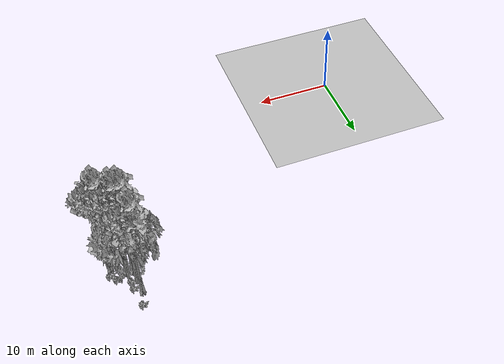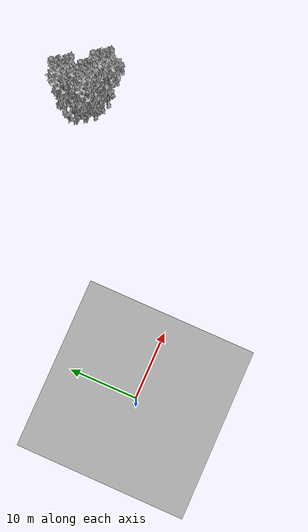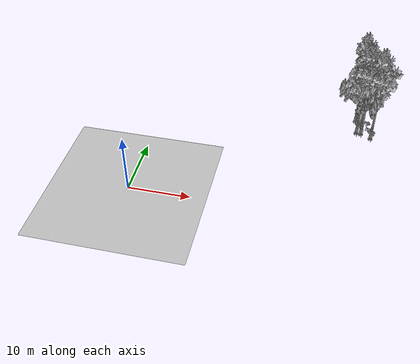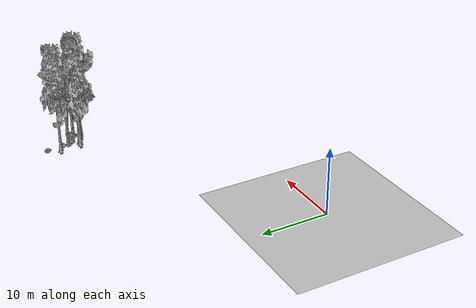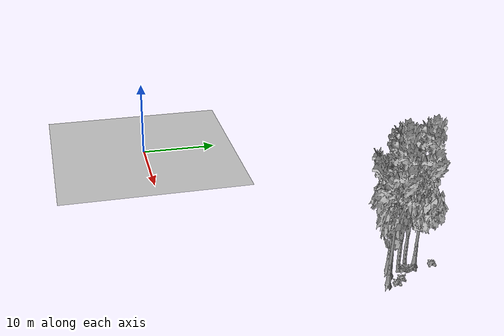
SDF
<sdf version="1.7">
 <world name="default">
  <model name="ground_plane">
   <static>1</static>
   <link name="link">
    <collision name="collision">
     <pose>-50 0 0 0 -0 0</pose>
     <geometry><plane><normal>0 0 1</normal><size>80 80</size></plane></geometry>
     <surface><contact><ode><min_depth>0.01</min_depth><max_vel>0</max_vel></ode></contact></surface>
    </collision>
    <visual name="grass">
     <cast_shadows>0</cast_shadows>
     <geometry>
      <mesh>
       <scale>0.46714285714285714 0.46714285714285714 0.1</scale>
       <uri>file://grass_plane/meshes/grass_plane.dae</uri>
      </mesh>
     </geometry>
    </visual>
   </link>
  </model>
  <model name="Tree 24">
   <static>1</static>
   <pose>34.144390346652955 24.84890358442013 0 1.57079 -0 0</pose>
   <link name="link">
    <collision name="collision">
     <geometry><mesh><scale>3.5 5 3.5</scale><uri>model://tree_9/meshes/tree_9.obj</uri></mesh></geometry>
    </collision>
    <visual name="visual">
     <geometry><mesh><scale>3.5 5 3.5</scale><uri>model://tree_9/meshes/tree_9.obj</uri></mesh></geometry>
    </visual>
   </link>
  </model>
  <model name="Tree 69">
   <static>1</static>
   <pose>36.89666454367563 20.619713791693606 0 1.57079 -0 0</pose>
   <link name="link">
    <collision name="collision">
     <geometry><mesh><scale>3.5 5 3.5</scale><uri>model://tree_9/meshes/tree_9.obj</uri></mesh></geometry>
    </collision>
    <visual name="visual">
     <geometry><mesh><scale>3.5 5 3.5</scale><uri>model://tree_9/meshes/tree_9.obj</uri></mesh></geometry>
    </visual>
   </link>
  </model>
  <model name="Tree 106">
   <static>1</static>
   <pose>35.2304546563073 21.513150521389548 0 1.57079 -0 0</pose>
   <link name="link">
    <collision name="collision">
     <geometry><mesh><scale>3.5 5 3.5</scale><uri>model://tree_9/meshes/tree_9.obj</uri></mesh></geometry>
    </collision>
    <visual name="visual">
     <geometry><mesh><scale>3.5 5 3.5</scale><uri>model://tree_9/meshes/tree_9.obj</uri></mesh></geometry>
    </visual>
   </link>
  </model>
  <model name="Tree 113">
   <static>1</static>
   <pose>34.28763781548655 23.565418315941358 0 1.57079 -0 0</pose>
   <link name="link">
    <collision name="collision">
     <geometry><mesh><scale>3.5 5 3.5</scale><uri>model://tree_2/meshes/tree_2.obj</uri></mesh></geometry>
    </collision>
    <visual name="visual">
     <geometry><mesh><scale>3.5 5 3.5</scale><uri>model://tree_2/meshes/tree_2.obj</uri></mesh></geometry>
    </visual>
   </link>
  </model>
  <model name="Tree 347">
   <static>1</static>
   <pose>35.064202518608056 22.46567200485569 0 1.57079 -0 0</pose>
   <link name="link">
    <collision name="collision">
     <geometry><mesh><scale>3.5 5 3.5</scale><uri>model://tree_2/meshes/tree_2.obj</uri></mesh></geometry>
    </collision>
    <visual name="visual">
     <geometry><mesh><scale>3.5 5 3.5</scale><uri>model://tree_2/meshes/tree_2.obj</uri></mesh></geometry>
    </visual>
   </link>
  </model>
  <model name="Tree 512">
   <static>1</static>
   <pose>34.46039298596928 21.609359703689066 0 1.57079 -0 0</pose>
   <link name="link">
    <collision name="collision">
     <geometry><mesh><scale>3.5 5 3.5</scale><uri>model://tree_9/meshes/tree_9.obj</uri></mesh></geometry>
    </collision>
    <visual name="visual">
     <geometry><mesh><scale>3.5 5 3.5</scale><uri>model://tree_9/meshes/tree_9.obj</uri></mesh></geometry>
    </visual>
   </link>
  </model>
  <model name="Bush 9">
   <static>1</static>
   <pose>34.913564755581774 24.214073338477988 0 1.57079 -0 0</pose>
   <link name="link">
    <collision name="collision">
     <geometry><mesh><scale>2 2 2</scale><uri>model://bush_2/meshes/bush_2.obj</uri></mesh></geometry>
     <surface><contact><collide_without_contact>false</collide_without_contact></contact></surface>
    </collision>
    <visual name="visual">
     <geometry><mesh><scale>2 2 2</scale><uri>model://bush_2/meshes/bush_2.obj</uri></mesh></geometry>
    </visual>
   </link>
  </model>
  <model name="Bush 76">
   <static>1</static>
   <pose>36.09708071059387 22.940663366298693 0 1.57079 -0 0</pose>
   <link name="link">
    <collision name="collision">
     <geometry><mesh><scale>2 2 2</scale><uri>model://bush_5/meshes/bush_5.obj</uri></mesh></geometry>
     <surface><contact><collide_without_contact>false</collide_without_contact></contact></surface>
    </collision>
    <visual name="visual">
     <geometry><mesh><scale>2 2 2</scale><uri>model://bush_5/meshes/bush_5.obj</uri></mesh></geometry>
    </visual>
   </link>
  </model>
  <model name="Bush 215">
   <static>1</static>
   <pose>36.43795569007986 22.30038213927672 0 1.57079 -0 0</pose>
   <link name="link">
    <collision name="collision">
     <geometry><mesh><scale>2 2 2</scale><uri>model://bush_2/meshes/bush_2.obj</uri></mesh></geometry>
     <surface><contact><collide_without_contact>false</collide_without_contact></contact></surface>
    </collision>
    <visual name="visual">
     <geometry><mesh><scale>2 2 2</scale><uri>model://bush_2/meshes/bush_2.obj</uri></mesh></geometry>
    </visual>
   </link>
  </model>
  <model name="Bush 490">
   <static>1</static>
   <pose>34.93927969495314 23.168310050614437 0 1.57079 -0 0</pose>
   <link name="link">
    <collision name="collision">
     <geometry><mesh><scale>2 2 2</scale><uri>model://bush_2/meshes/bush_2.obj</uri></mesh></geometry>
     <surface><contact><collide_without_contact>false</collide_without_contact></contact></surface>
    </collision>
    <visual name="visual">
     <geometry><mesh><scale>2 2 2</scale><uri>model://bush_2/meshes/bush_2.obj</uri></mesh></geometry>
    </visual>
   </link>
  </model>
  <model name="Bush 511">
   <static>1</static>
   <pose>37.084405282727204 21.540744593439378 0 1.57079 -0 0</pose>
   <link name="link">
    <collision name="collision">
     <geometry><mesh><scale>2 2 2</scale><uri>model://bush_2/meshes/bush_2.obj</uri></mesh></geometry>
     <surface><contact><collide_without_contact>false</collide_without_contact></contact></surface>
    </collision>
    <visual name="visual">
     <geometry><mesh><scale>2 2 2</scale><uri>model://bush_2/meshes/bush_2.obj</uri></mesh></geometry>
    </visual>
   </link>
  </model>
  <model name="Bush 619">
   <static>1</static>
   <pose>34.51179723391016 26.7222608673882 0 1.57079 -0 0</pose>
   <link name="link">
    <collision name="collision">
     <geometry><mesh><scale>2 2 2</scale><uri>model://bush_2/meshes/bush_2.obj</uri></mesh></geometry>
     <surface><contact><collide_without_contact>false</collide_without_contact></contact></surface>
    </collision>
    <visual name="visual">
     <geometry><mesh><scale>2 2 2</scale><uri>model://bush_2/meshes/bush_2.obj</uri></mesh></geometry>
    </visual>
   </link>
  </model>
 </world>
</sdf>
